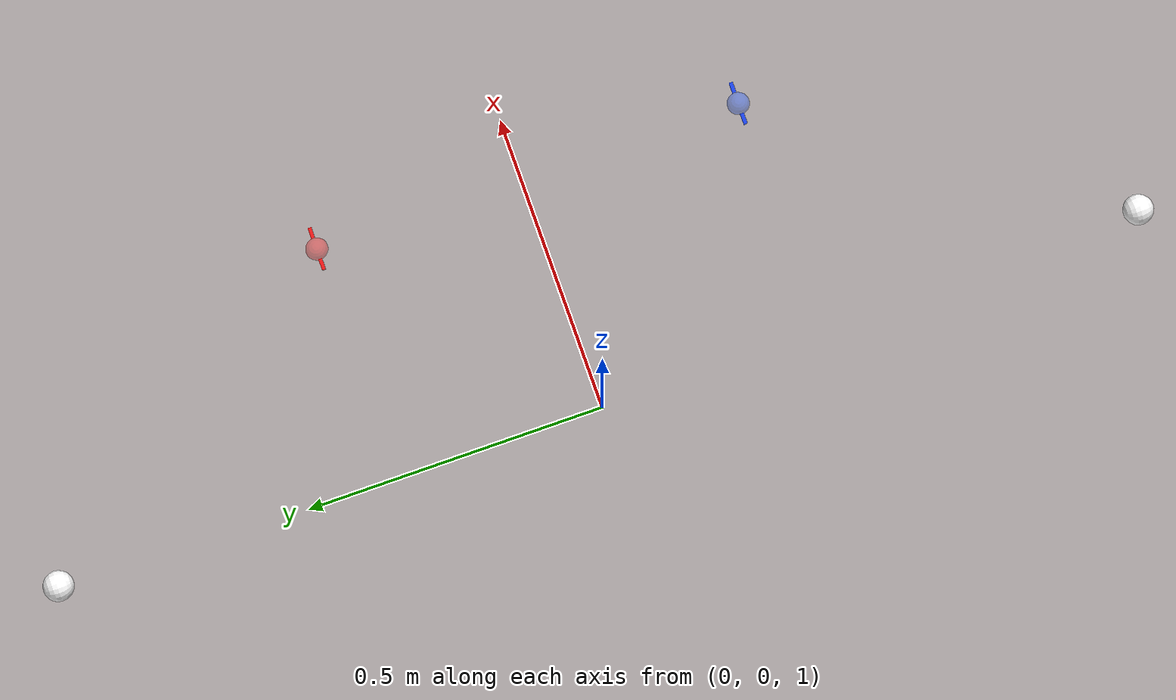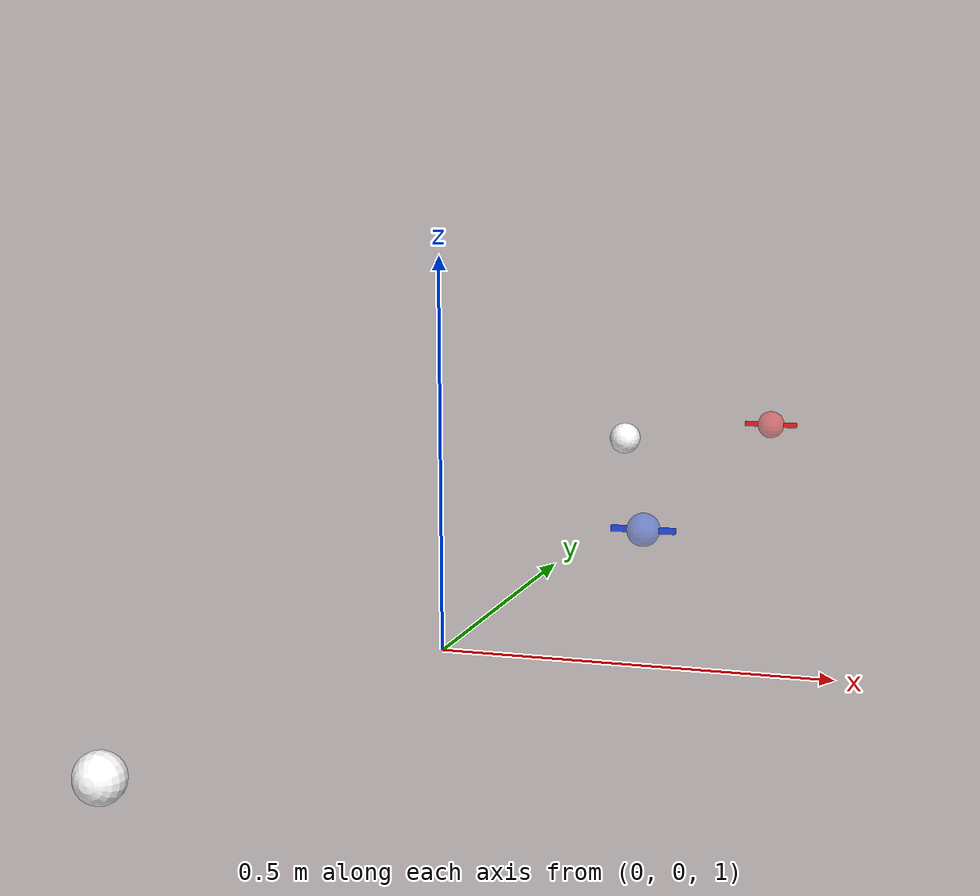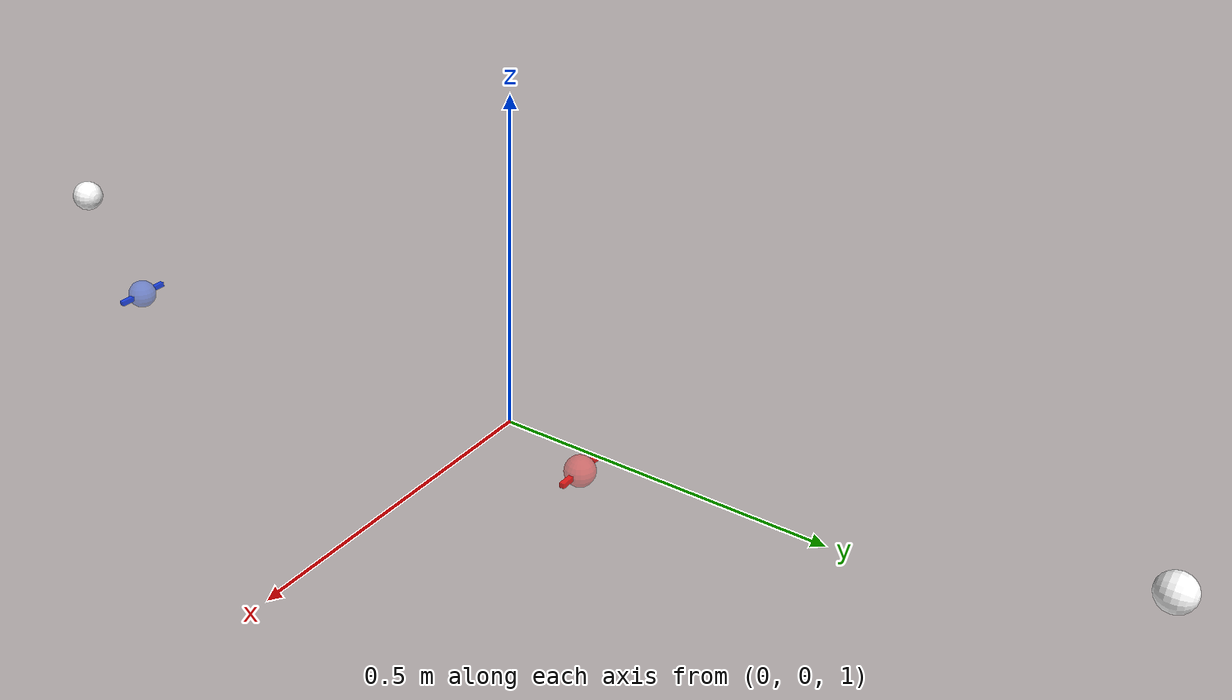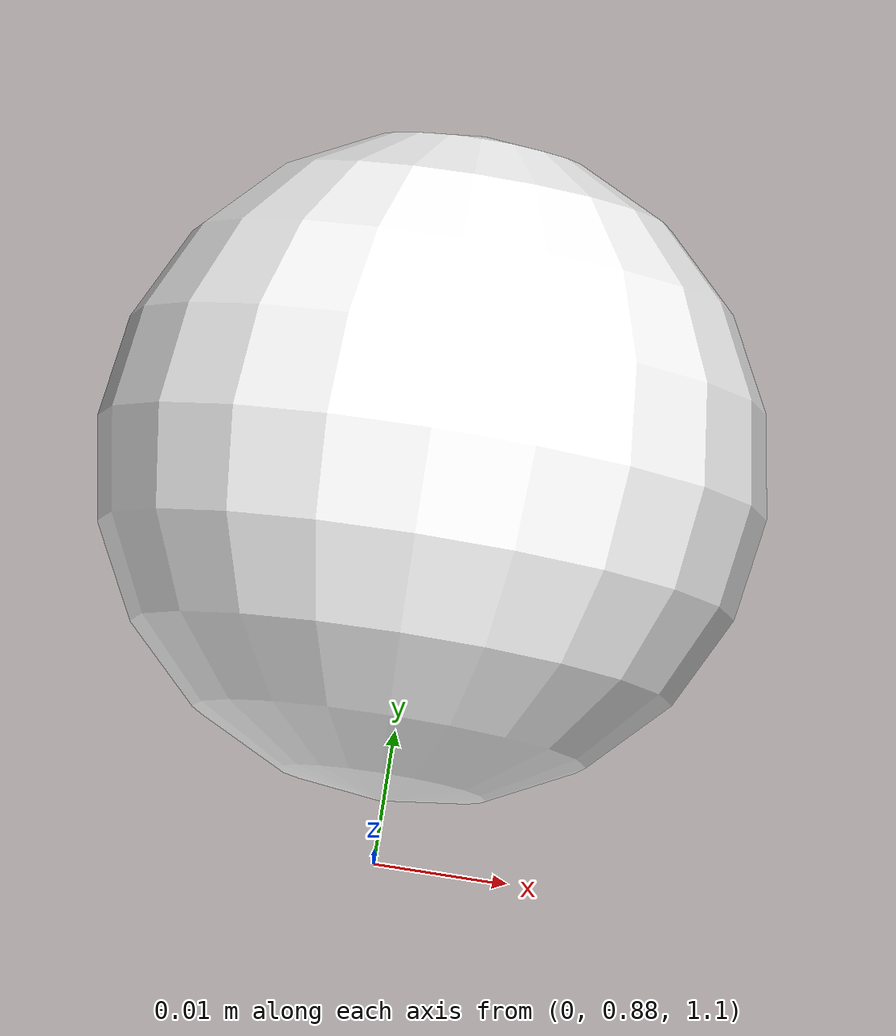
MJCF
<mujoco model="Marvin M6-S-CCS-696-V4.0_Base_and_Stand_Asm urdf">
  <compiler angle="radian" meshdir="./"/>
  <size nuser_jnt="1"/>

  <worldbody>
    <body name="Link1_L" pos="0 0.2115 1.121" quat="0.707105 -0.707108 0 0">
      <inertial pos="2.347e-05 0.0055715 -0.03076" quat="0.711599 0.0343691 -0.0341702 0.700912" mass="1.9705" diaginertia="0.00529754 0.00492285 0.00184874"/>
      <joint name="Joint1_L" pos="0 0 0" axis="0 0 1" range="-1.5708 3.1067" actuatorfrcrange="-108 108" user="4.0"/>
      <body name="Link2_L" quat="0.707105 0.707108 0 0">
        <inertial pos="0.00013483 0.0617046 0.00950639" quat="0.643375 0.765551 -3.57328e-05 0.000294349" mass="2.24398" diaginertia="0.0119493 0.0112156 0.00338374"/>
        <joint name="Joint2_L" pos="0 0 0" axis="0 0 1" range="-1.76 2.0944" actuatorfrcrange="-108 108" user="4.0"/>
        <body name="Link3_L" pos="0 0.287 0" quat="0.707105 -0.707108 0 0">
          <inertial pos="0.00968562 0.00246599 -0.046273" quat="0.782446 -0.0355285 -0.0735516 0.617337" mass="1.9242" diaginertia="0.00765215 0.00730789 0.0016338"/>
          <joint name="Joint3_L" pos="0 0 0" axis="0 0 1" range="-3.1 3.1" actuatorfrcrange="-66 66" user="4.0"/>
          <body name="Link4_L" pos="0.018 0 0" quat="-2.59734e-06 2.59735e-06 -0.707108 0.707105">
            <inertial pos="0.00850411 -0.0471822 0.00941509" quat="0.741754 0.628694 0.0774999 -0.220317" mass="1.6085" diaginertia="0.00603244 0.00535875 0.00198228"/>
            <joint name="Joint4_L" pos="0 0 0" axis="0 0 1" range="-2.5307 0" actuatorfrcrange="-66 66" user="4.0"/>
            <body name="Link5_L" pos="0.018 -0.314 0" quat="-2.59734e-06 2.59735e-06 -0.707108 0.707105">
              <inertial pos="0.00051127 0.00101064 -0.112717" quat="0.999438 -0.00995046 -0.00675781 0.0312997" mass="2.0883" diaginertia="0.00626924 0.00564262 0.00243436"/>
              <joint name="Joint5_L" pos="0 0 0" axis="0 0 1" range="-3.1067 3.1067" actuatorfrcrange="-18 18" user="4.0"/>
              <body name="Link6_L" quat="0.499998 0.5 -0.5 0.500002">
                <inertial pos="0.00032659 0.00531336 -0.00030182" quat="0.718188 -0.0225408 0.00407878 0.695472" mass="0.72496" diaginertia="0.000517351 0.000460362 0.000425057"/>
                <joint name="Joint6_L" pos="0 0 0" axis="0 0 1" range="-1.0472 1.0472" actuatorfrcrange="-18 18" user="4.0"/>
                <body name="Link7_L" quat="0.499998 0.5 -0.5 0.500002">
                  <inertial pos="-9.108e-05 -0.0315325 0.00889371" quat="0.84481 0.535026 0.00229584 -0.00609725" mass="0.68606" diaginertia="0.00173691 0.00153911 0.000745263"/>
                  <joint name="Joint7_L" pos="0 0 0" axis="0 0 1" range="-1.5708 1.5708" actuatorfrcrange="-18 18" user="4.0"/>
                  <geom size="0.025" pos="0 -0.095 0" quat="0.499998 0.5 -0.5 0.500002" contype="0" conaffinity="0" group="1" density="0" rgba="1 1 1 1"/>
                  <site name="tcp_L" pos="0 -0.095 0" quat="0.499998 0.5 -0.5 0.500002" size="0.008" rgba="1 0.2 0.2 1"/>
                </body>
              </body>
            </body>
          </body>
        </body>
      </body>
    </body>
    <body name="Link1_R" pos="0 -0.2115 1.121" quat="0.707105 0.707108 0 0">
      <inertial pos="2.347e-05 0.0055715 -0.03076" quat="0.711599 0.0343691 -0.0341702 0.700912" mass="1.9705" diaginertia="0.00529754 0.00492285 0.00184874"/>
      <joint name="Joint1_R" pos="0 0 0" axis="0 0 1" range="-3.1067 1.5708" actuatorfrcrange="-108 108" user="4.0"/>
      <body name="Link2_R" quat="0.707105 0.707108 0 0">
        <inertial pos="0.00013483 0.0617046 0.00950639" quat="0.643375 0.765551 -3.57328e-05 0.000294349" mass="2.24398" diaginertia="0.0119493 0.0112156 0.00338374"/>
        <joint name="Joint2_R" pos="0 0 0" axis="0 0 1" range="-1.76 2.0944" actuatorfrcrange="-108 108" user="4.0"/>
        <body name="Link3_R" pos="0 0.287 0" quat="0.707105 -0.707108 0 0">
          <inertial pos="0.00968562 0.00246599 -0.046273" quat="0.782446 -0.0355285 -0.0735516 0.617337" mass="1.9242" diaginertia="0.00765215 0.00730789 0.0016338"/>
          <joint name="Joint3_R" pos="0 0 0" axis="0 0 1" range="-3.1 3.1" actuatorfrcrange="-66 66" user="4.0"/>
          <body name="Link4_R" pos="0.018 0 0" quat="-2.59734e-06 2.59735e-06 -0.707108 0.707105">
            <inertial pos="0.00850411 -0.0471822 0.00941509" quat="0.741754 0.628694 0.0774999 -0.220317" mass="1.6085" diaginertia="0.00603244 0.00535875 0.00198228"/>
            <joint name="Joint4_R" pos="0 0 0" axis="0 0 1" range="-2.5307 0" actuatorfrcrange="-66 66" user="4.0"/>
            <body name="Link5_R" pos="0.018 -0.314 0" quat="-2.59734e-06 2.59735e-06 -0.707108 0.707105">
              <inertial pos="-0.00051127 -0.00101064 -0.112717" quat="0.999438 0.00995046 0.00675781 0.0312997" mass="2.0883" diaginertia="0.00626924 0.00564262 0.00243436"/>
              <joint name="Joint5_R" pos="0 0 0" axis="0 0 1" range="-3.1067 3.1067" actuatorfrcrange="-18 18" user="4.0"/>
              <body name="Link6_R" quat="0.499998 0.5 -0.5 0.500002">
                <inertial pos="0.00032659 -0.00531336 0.00030182" quat="0.695472 -0.00407878 0.0225408 0.718188" mass="0.72496" diaginertia="0.000517351 0.000460362 0.000425057"/>
                <joint name="Joint6_R" pos="0 0 0" axis="0 0 1" range="-1.0472 1.0472" actuatorfrcrange="-18 18" user="4.0"/>
                <body name="Link7_R" quat="0.499998 0.5 -0.5 0.500002">
                  <inertial pos="-9.108e-05 -0.0315325 0.00889371" quat="0.84481 0.535026 0.00229584 -0.00609725" mass="0.68606" diaginertia="0.00173691 0.00153911 0.000745263"/>
                  <joint name="Joint7_R" pos="0 0 0" axis="0 0 1" range="-1.5708 1.5708" actuatorfrcrange="-18 18" user="4.0"/>
                  <geom size="0.025" pos="0 -0.095 0" quat="0.499998 0.5 -0.5 0.500002" contype="0" conaffinity="0" group="1" density="0" rgba="1 1 1 1"/>
                  <site name="tcp_R" pos="0 -0.095 0" quat="0.499998 0.5 -0.5 0.500002" size="0.008" rgba="0.2 0.4 1 1"/>
                </body>
              </body>
            </body>
          </body>
        </body>
      </body>
    </body>
    <body name="target_L" mocap="true" pos="0.35 0.35 1.25">
      <geom name="target_geom_L" type="sphere" size="0.018" rgba="1 0.2 0.2 0.45" contype="0" conaffinity="0"/>
      <site name="target_site_L" type="box" size="0.035 0.003 0.003" rgba="1 0 0 0.8"/>
    </body>
    <body name="target_R" mocap="true" pos="0.35 -0.35 1.25">
      <geom name="target_geom_R" type="sphere" size="0.018" rgba="0.2 0.4 1 0.45" contype="0" conaffinity="0"/>
      <site name="target_site_R" type="box" size="0.035 0.003 0.003" rgba="0 0.2 1 0.8"/>
    </body>
  </worldbody>
</mujoco>
